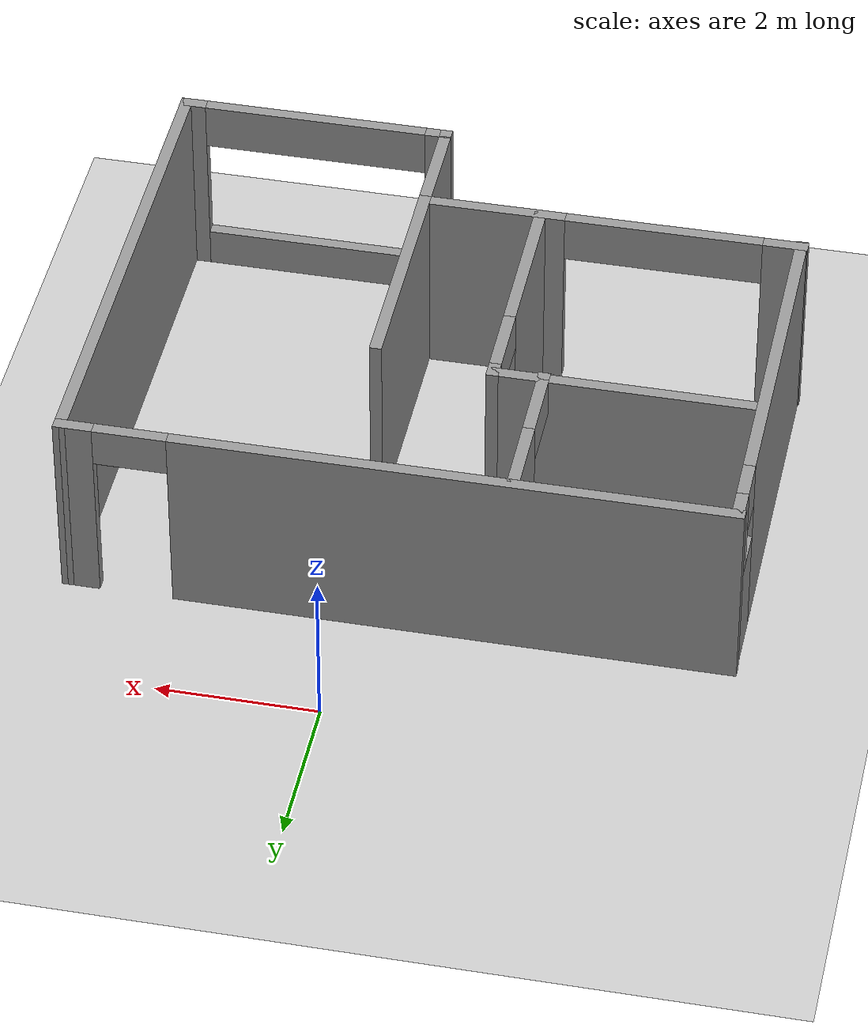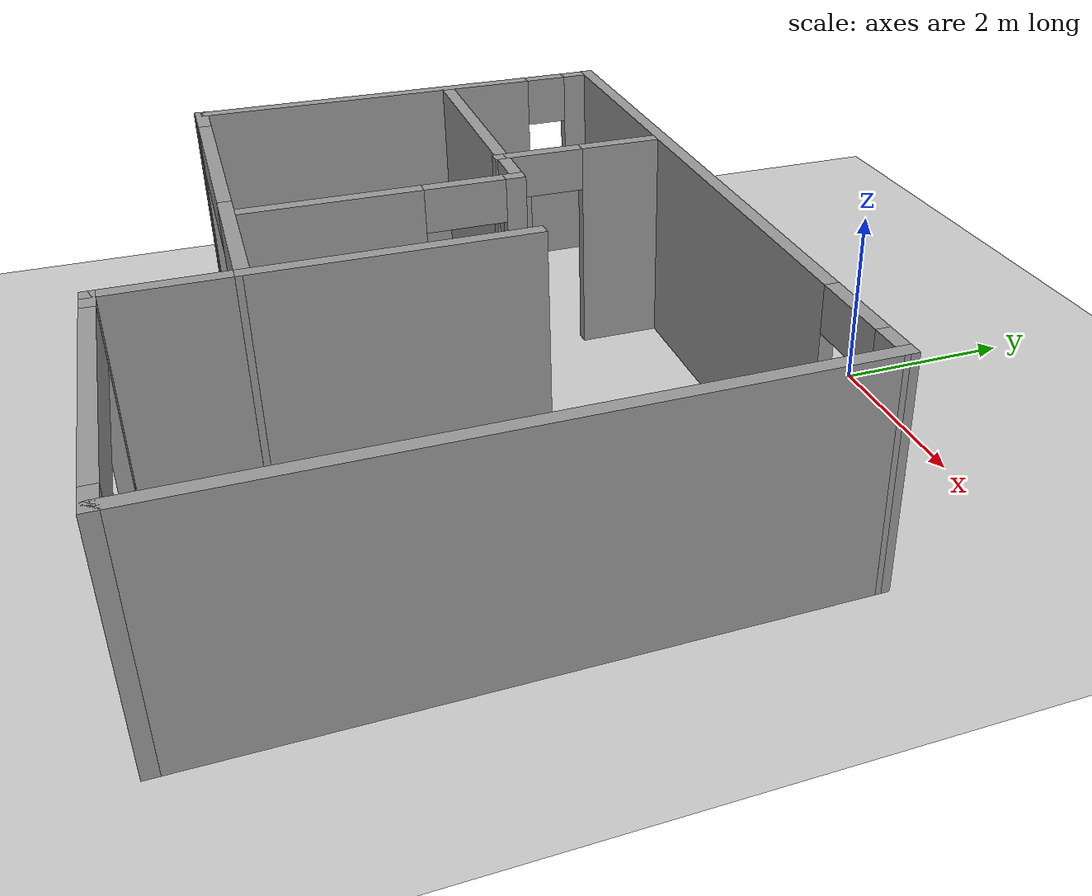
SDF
<sdf version="1.4">
 <world name="default">
  <include><uri>model://ground_plane</uri></include>
  <include><uri>model://sun</uri></include>
  <include><uri>model://house</uri></include>
  <light name="bath_light" type="spot">
   <attenuation><range>0</range><linear>0.05</linear></attenuation>
   <specular>1 1 1 1</specular>
   <spot><inner_angle>0.5</inner_angle><outer_angle>1</outer_angle><falloff>1</falloff></spot>
   <pose>-2.5 2.15 2.75 0 0 0</pose>
  </light>
  <light name="bedroom_light" type="spot">
   <attenuation><range>0</range><linear>0.05</linear></attenuation>
   <specular>1 1 1 1</specular>
   <spot><inner_angle>0.5</inner_angle><outer_angle>1</outer_angle><falloff>1</falloff></spot>
   <pose>-2.2 -0.2 2.75 0 0 0</pose>
  </light>
  <light name="living_light" type="spot">
   <attenuation><range>0</range><linear>0.05</linear></attenuation>
   <specular>1 1 1 1</specular>
   <spot><inner_angle>0.5</inner_angle><outer_angle>1</outer_angle><falloff>1</falloff></spot>
   <pose>2.41 -0.36 2.75 0 0 0</pose>
  </light>
  <light name="kitchen_light" type="spot">
   <attenuation><range>0</range><linear>0.05</linear></attenuation>
   <specular>1 1 1 1</specular>
   <spot><inner_angle>0.5</inner_angle><outer_angle>1</outer_angle><falloff>1</falloff></spot>
   <pose>0 0 2.75 0 0 0</pose>
  </light>
  <plugin name="KitcherLight" filename="libroom_light.so">
   <entity>cipobot::chassis</entity>
   <light_name>kitchen_light</light_name>
   <pose>-0.1 0.7 0 0 0 0</pose>
   <geometry><box><size>1 4.35 3</size></box></geometry>
  </plugin>
  <plugin name="LivingLight" filename="libroom_light.so">
   <entity>cipobot::chassis</entity>
   <light_name>living_light</light_name>
   <pose>2.3 -0.1 0 0 0 0 0</pose>
   <geometry><box><size>2.75 5.65 3</size></box></geometry>
  </plugin>
  <plugin name="BedroomLight" filename="libroom_light.so">
   <entity>cipobot::chassis</entity>
   <light_name>bedroom_light</light_name>
   <pose>-2.4 -0.3 0 0 0 0 0</pose>
   <geometry><box><size>2.75 2.6 3</size></box></geometry>
  </plugin>
  <plugin name="BathroomLight" filename="libroom_light.so">
   <entity>cipobot::chassis</entity>
   <light_name>bath_light</light_name>
   <pose>-2.75 2.15 0 0 0 0 0</pose>
   <geometry><box><size>2.25 1.5 3</size></box></geometry>
  </plugin>
 </world>
</sdf>

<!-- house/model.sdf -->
<sdf version='1.6'>
  <model name='house'>
    <static>true</static>
    <pose frame=''>-0.57616 -4.8144 0 0 -0 0</pose>
    <link name='Wall_0'>
      <pose frame=''>0 3.17108 0 0 -0 0.000963</pose>
      <visual name='Wall_0_Visual_0'>
        <pose frame=''>-0.686109 0 1.25 0 -0 0</pose>
        <geometry>
          <box>
            <size>6.84975 0.15 2.5</size>
          </box>
        </geometry>
        <material>
          <script>
            <uri>file://media/materials/scripts/gazebo.material</uri>
            <name>Gazebo/Grey</name>
          </script>
          <ambient>1 1 1 1</ambient>
        </material>
        <meta>
          <layer>0</layer>
        </meta>
      </visual>
      <collision name='Wall_0_Collision_0'>
        <geometry>
          <box>
            <size>6.84975 0.15 2.5</size>
          </box>
        </geometry>
        <pose frame=''>-0.686109 0 1.25 0 -0 0</pose>
      </collision>
      <visual name='Wall_0_Visual_1'>
        <pose frame=''>3.87487 0 1.25 0 -0 0</pose>
        <geometry>
          <box>
            <size>0.472219 0.15 2.5</size>
          </box>
        </geometry>
        <material>
          <script>
            <uri>file://media/materials/scripts/gazebo.material</uri>
            <name>Gazebo/Grey</name>
          </script>
          <ambient>1 1 1 1</ambient>
        </material>
        <meta>
          <layer>0</layer>
        </meta>
      </visual>
      <collision name='Wall_0_Collision_1'>
        <geometry>
          <box>
            <size>0.472219 0.15 2.5</size>
          </box>
        </geometry>
        <pose frame=''>3.87487 0 1.25 0 -0 0</pose>
      </collision>
      <visual name='Wall_0_Visual_2'>
        <pose frame=''>3.18876 0 2.25 0 -0 0</pose>
        <geometry>
          <box>
            <size>0.9 0.15 0.5</size>
          </box>
        </geometry>
        <material>
          <script>
            <uri>file://media/materials/scripts/gazebo.material</uri>
            <name>Gazebo/Grey</name>
          </script>
          <ambient>1 1 1 1</ambient>
        </material>
        <meta>
          <layer>0</layer>
        </meta>
      </visual>
      <collision name='Wall_0_Collision_2'>
        <geometry>
          <box>
            <size>0.9 0.15 0.5</size>
          </box>
        </geometry>
        <pose frame=''>3.18876 0 2.25 0 -0 0</pose>
      </collision>
    </link>
    <link name='Wall_12'>
      <pose frame=''>-4.02188 0.653826 0 0 -0 1.57184</pose>
      <visual name='Wall_12_Visual_0'>
        <pose frame=''>-0.461902 0 1.25 0 -0 0</pose>
        <geometry>
          <box>
            <size>4.22992 0.15 2.5</size>
          </box>
        </geometry>
        <material>
          <script>
            <uri>file://media/materials/scripts/gazebo.material</uri>
            <name>Gazebo/Grey</name>
          </script>
          <ambient>1 1 1 1</ambient>
        </material>
        <meta>
          <layer>0</layer>
        </meta>
      </visual>
      <collision name='Wall_12_Collision_0'>
        <geometry>
          <box>
            <size>4.22992 0.15 2.5</size>
          </box>
        </geometry>
        <pose frame=''>-0.461902 0 1.25 0 -0 0</pose>
      </collision>
      <visual name='Wall_12_Visual_1'>
        <pose frame=''>2.11496 0 0.7 0 -0 0</pose>
        <geometry>
          <box>
            <size>0.923803 0.15 1.4</size>
          </box>
        </geometry>
        <material>
          <script>
            <uri>file://media/materials/scripts/gazebo.material</uri>
            <name>Gazebo/Grey</name>
          </script>
          <ambient>1 1 1 1</ambient>
        </material>
        <meta>
          <layer>0</layer>
        </meta>
      </visual>
      <collision name='Wall_12_Collision_1'>
        <geometry>
          <box>
            <size>0.923803 0.15 1.4</size>
          </box>
        </geometry>
        <pose frame=''>2.11496 0 0.7 0 -0 0</pose>
      </collision>
      <visual name='Wall_12_Visual_2'>
        <pose frame=''>2.36496 0 1.95 0 -0 0</pose>
        <geometry>
          <box>
            <size>0.423803 0.15 1.1</size>
          </box>
        </geometry>
        <material>
          <script>
            <uri>file://media/materials/scripts/gazebo.material</uri>
            <name>Gazebo/Grey</name>
          </script>
          <ambient>1 1 1 1</ambient>
        </material>
        <meta>
          <layer>0</layer>
        </meta>
      </visual>
      <collision name='Wall_12_Collision_2'>
        <geometry>
          <box>
            <size>0.423803 0.15 1.1</size>
          </box>
        </geometry>
        <pose frame=''>2.36496 0 1.95 0 -0 0</pose>
      </collision>
      <visual name='Wall_12_Visual_3'>
        <pose frame=''>1.90306 0 2.2 0 -0 0</pose>
        <geometry>
          <box>
            <size>0.5 0.15 0.6</size>
          </box>
        </geometry>
        <material>
          <script>
            <uri>file://media/materials/scripts/gazebo.material</uri>
            <name>Gazebo/Grey</name>
          </script>
          <ambient>1 1 1 1</ambient>
        </material>
        <meta>
          <layer>0</layer>
        </meta>
      </visual>
      <collision name='Wall_12_Collision_3'>
        <geometry>
          <box>
            <size>0.5 0.15 0.6</size>
          </box>
        </geometry>
        <pose frame=''>1.90306 0 2.2 0 -0 0</pose>
      </collision>
    </link>
    <link name='Wall_14'>
      <collision name='Wall_14_Collision'>
        <geometry>
          <box>
            <size>3 0.15 2.5</size>
          </box>
        </geometry>
        <pose frame=''>0 0 1.25 0 -0 0</pose>
      </collision>
      <visual name='Wall_14_Visual'>
        <pose frame=''>0 0 1.25 0 -0 0</pose>
        <geometry>
          <box>
            <size>3 0.15 2.5</size>
          </box>
        </geometry>
        <material>
          <script>
            <uri>file://media/materials/scripts/gazebo.material</uri>
            <name>Gazebo/Grey</name>
          </script>
          <ambient>1 1 1 1</ambient>
        </material>
        <meta>
          <layer>0</layer>
        </meta>
      </visual>
      <pose frame=''>0.685981 -0.400036 0 0 -0 1.5708</pose>
    </link>
    <link name='Wall_16'>
      <pose frame=''>-0.774441 -0.274142 0 0 -0 1.5708</pose>
      <visual name='Wall_16_Visual_0'>
        <pose frame=''>-0.562712 0 1.25 0 -0 0</pose>
        <geometry>
          <box>
            <size>2.04987 0.15 2.5</size>
          </box>
        </geometry>
        <material>
          <script>
            <uri>file://media/materials/scripts/gazebo.material</uri>
            <name>Gazebo/Grey</name>
          </script>
          <ambient>1 1 1 1</ambient>
        </material>
        <meta>
          <layer>0</layer>
        </meta>
      </visual>
      <collision name='Wall_16_Collision_0'>
        <geometry>
          <box>
            <size>2.04987 0.15 2.5</size>
          </box>
        </geometry>
        <pose frame=''>-0.562712 0 1.25 0 -0 0</pose>
      </collision>
      <visual name='Wall_16_Visual_1'>
        <pose frame=''>1.47494 0 1.25 0 -0 0</pose>
        <geometry>
          <box>
            <size>0.225423 0.15 2.5</size>
          </box>
        </geometry>
        <material>
          <script>
            <uri>file://media/materials/scripts/gazebo.material</uri>
            <name>Gazebo/Grey</name>
          </script>
          <ambient>1 1 1 1</ambient>
        </material>
        <meta>
          <layer>0</layer>
        </meta>
      </visual>
      <collision name='Wall_16_Collision_1'>
        <geometry>
          <box>
            <size>0.225423 0.15 2.5</size>
          </box>
        </geometry>
        <pose frame=''>1.47494 0 1.25 0 -0 0</pose>
      </collision>
      <visual name='Wall_16_Visual_2'>
        <pose frame=''>0.912225 0 2.25 0 -0 0</pose>
        <geometry>
          <box>
            <size>0.9 0.15 0.5</size>
          </box>
        </geometry>
        <material>
          <script>
            <uri>file://media/materials/scripts/gazebo.material</uri>
            <name>Gazebo/Grey</name>
          </script>
          <ambient>1 1 1 1</ambient>
        </material>
        <meta>
          <layer>0</layer>
        </meta>
      </visual>
      <collision name='Wall_16_Collision_2'>
        <geometry>
          <box>
            <size>0.9 0.15 0.5</size>
          </box>
        </geometry>
        <pose frame=''>0.912225 0 2.25 0 -0 0</pose>
      </collision>
    </link>
    <link name='Wall_17'>
      <collision name='Wall_17_Collision'>
        <geometry>
          <box>
            <size>3.359 0.15 2.5</size>
          </box>
        </geometry>
        <pose frame=''>0 0 1.25 0 -0 0</pose>
      </collision>
      <visual name='Wall_17_Visual'>
        <pose frame=''>0 0 1.25 0 -0 0</pose>
        <geometry>
          <box>
            <size>3.359 0.15 2.5</size>
          </box>
        </geometry>
        <material>
          <script>
            <uri>file://media/materials/scripts/gazebo.material</uri>
            <name>Gazebo/Grey</name>
          </script>
          <ambient>1 1 1 1</ambient>
        </material>
        <meta>
          <layer>0</layer>
        </meta>
      </visual>
      <pose frame=''>-2.39044 1.23851 0 0 -0 3.14159</pose>
    </link>
    <link name='Wall_19'>
      <pose frame=''>-1.38218 2.13939 0 0 -0 1.5708</pose>
      <visual name='Wall_19_Visual_0'>
        <pose frame=''>-0.93679 0 1.25 0 -0 0</pose>
        <geometry>
          <box>
            <size>0.12642 0.15 2.5</size>
          </box>
        </geometry>
        <material>
          <script>
            <uri>file://media/materials/scripts/gazebo.material</uri>
            <name>Gazebo/Grey</name>
          </script>
          <ambient>1 1 1 1</ambient>
        </material>
        <meta>
          <layer>0</layer>
        </meta>
      </visual>
      <collision name='Wall_19_Collision_0'>
        <geometry>
          <box>
            <size>0.12642 0.15 2.5</size>
          </box>
        </geometry>
        <pose frame=''>-0.93679 0 1.25 0 -0 0</pose>
      </collision>
      <visual name='Wall_19_Visual_1'>
        <pose frame=''>0.51321 0 1.25 0 -0 0</pose>
        <geometry>
          <box>
            <size>0.97358 0.15 2.5</size>
          </box>
        </geometry>
        <material>
          <script>
            <uri>file://media/materials/scripts/gazebo.material</uri>
            <name>Gazebo/Grey</name>
          </script>
          <ambient>1 1 1 1</ambient>
        </material>
        <meta>
          <layer>0</layer>
        </meta>
      </visual>
      <collision name='Wall_19_Collision_1'>
        <geometry>
          <box>
            <size>0.97358 0.15 2.5</size>
          </box>
        </geometry>
        <pose frame=''>0.51321 0 1.25 0 -0 0</pose>
      </collision>
      <visual name='Wall_19_Visual_2'>
        <pose frame=''>-0.42358 0 2.25 0 -0 0</pose>
        <geometry>
          <box>
            <size>0.9 0.15 0.5</size>
          </box>
        </geometry>
        <material>
          <script>
            <uri>file://media/materials/scripts/gazebo.material</uri>
            <name>Gazebo/Grey</name>
          </script>
          <ambient>1 1 1 1</ambient>
        </material>
        <meta>
          <layer>0</layer>
        </meta>
      </visual>
      <collision name='Wall_19_Collision_2'>
        <geometry>
          <box>
            <size>0.9 0.15 0.5</size>
          </box>
        </geometry>
        <pose frame=''>-0.42358 0 2.25 0 -0 0</pose>
      </collision>
    </link>
    <link name='Wall_4'>
      <collision name='Wall_4_Collision'>
        <geometry>
          <box>
            <size>6.5 0.15 2.5</size>
          </box>
        </geometry>
        <pose frame=''>0 0 1.25 0 -0 0</pose>
      </collision>
      <visual name='Wall_4_Visual'>
        <pose frame=''>0 0 1.25 0 -0 0</pose>
        <geometry>
          <box>
            <size>6.5 0.15 2.5</size>
          </box>
        </geometry>
        <material>
          <script>
            <uri>file://media/materials/scripts/gazebo.material</uri>
            <name>Gazebo/Grey</name>
          </script>
          <ambient>1 1 1 1</ambient>
        </material>
        <meta>
          <layer>0</layer>
        </meta>
      </visual>
      <pose frame=''>4.03598 -3.6e-05 0 0 -0 -1.5708</pose>
    </link>
    <link name='Wall_5'>
      <pose frame=''>2.36098 -3.17504 0 0 -0 3.14159</pose>
      <visual name='Wall_5_Visual_0'>
        <pose frame=''>-1.58232 0 1.25 0 -0 0</pose>
        <geometry>
          <box>
            <size>0.335362 0.15 2.5</size>
          </box>
        </geometry>
        <material>
          <script>
            <uri>file://media/materials/scripts/gazebo.material</uri>
            <name>Gazebo/Grey</name>
          </script>
          <ambient>1 1 1 1</ambient>
        </material>
        <meta>
          <layer>0</layer>
        </meta>
      </visual>
      <collision name='Wall_5_Collision_0'>
        <geometry>
          <box>
            <size>0.335362 0.15 2.5</size>
          </box>
        </geometry>
        <pose frame=''>-1.58232 0 1.25 0 -0 0</pose>
      </collision>
      <visual name='Wall_5_Visual_1'>
        <pose frame=''>0.167681 0 0.25 0 -0 0</pose>
        <geometry>
          <box>
            <size>3.16464 0.15 0.5</size>
          </box>
        </geometry>
        <material>
          <script>
            <uri>file://media/materials/scripts/gazebo.material</uri>
            <name>Gazebo/Grey</name>
          </script>
          <ambient>1 1 1 1</ambient>
        </material>
        <meta>
          <layer>0</layer>
        </meta>
      </visual>
      <collision name='Wall_5_Collision_1'>
        <geometry>
          <box>
            <size>3.16464 0.15 0.5</size>
          </box>
        </geometry>
        <pose frame=''>0.167681 0 0.25 0 -0 0</pose>
      </collision>
      <visual name='Wall_5_Visual_2'>
        <pose frame=''>1.58268 0 1.5 0 -0 0</pose>
        <geometry>
          <box>
            <size>0.334638 0.15 2</size>
          </box>
        </geometry>
        <material>
          <script>
            <uri>file://media/materials/scripts/gazebo.material</uri>
            <name>Gazebo/Grey</name>
          </script>
          <ambient>1 1 1 1</ambient>
        </material>
        <meta>
          <layer>0</layer>
        </meta>
      </visual>
      <collision name='Wall_5_Collision_2'>
        <geometry>
          <box>
            <size>0.334638 0.15 2</size>
          </box>
        </geometry>
        <pose frame=''>1.58268 0 1.5 0 -0 0</pose>
      </collision>
      <visual name='Wall_5_Visual_3'>
        <pose frame=''>0.000362 0 2.2 0 -0 0</pose>
        <geometry>
          <box>
            <size>2.83 0.15 0.6</size>
          </box>
        </geometry>
        <material>
          <script>
            <uri>file://media/materials/scripts/gazebo.material</uri>
            <name>Gazebo/Grey</name>
          </script>
          <ambient>1 1 1 1</ambient>
        </material>
        <meta>
          <layer>0</layer>
        </meta>
      </visual>
      <collision name='Wall_5_Collision_3'>
        <geometry>
          <box>
            <size>2.83 0.15 0.6</size>
          </box>
        </geometry>
        <pose frame=''>0.000362 0 2.2 0 -0 0</pose>
      </collision>
    </link>
    <link name='Wall_6'>
      <collision name='Wall_6_Collision'>
        <geometry>
          <box>
            <size>1.5 0.15 2.5</size>
          </box>
        </geometry>
        <pose frame=''>0 0 1.25 0 -0 0</pose>
      </collision>
      <visual name='Wall_6_Visual'>
        <pose frame=''>0 0 1.25 0 -0 0</pose>
        <geometry>
          <box>
            <size>1.5 0.15 2.5</size>
          </box>
        </geometry>
        <material>
          <script>
            <uri>file://media/materials/scripts/gazebo.material</uri>
            <name>Gazebo/Grey</name>
          </script>
          <ambient>1 1 1 1</ambient>
        </material>
        <meta>
          <layer>0</layer>
        </meta>
      </visual>
      <pose frame=''>0.685981 -2.50004 0 0 -0 1.5708</pose>
    </link>
    <link name='Wall_7'>
      <pose frame=''>-1.6724 -1.83079 0 0 -0 -3.13916</pose>
      <visual name='Wall_7_Visual_0'>
        <pose frame=''>-1.50813 0 1.25 0 -0 0</pose>
        <geometry>
          <box>
            <size>1.85051 0.15 2.5</size>
          </box>
        </geometry>
        <material>
          <script>
            <uri>file://media/materials/scripts/gazebo.material</uri>
            <name>Gazebo/Grey</name>
          </script>
          <ambient>1 1 1 1</ambient>
        </material>
        <meta>
          <layer>0</layer>
        </meta>
      </visual>
      <collision name='Wall_7_Collision_0'>
        <geometry>
          <box>
            <size>1.85051 0.15 2.5</size>
          </box>
        </geometry>
        <pose frame=''>-1.50813 0 1.25 0 -0 0</pose>
      </collision>
      <visual name='Wall_7_Visual_1'>
        <pose frame=''>2.15526 0 1.25 0 -0 0</pose>
        <geometry>
          <box>
            <size>0.556263 0.15 2.5</size>
          </box>
        </geometry>
        <material>
          <script>
            <uri>file://media/materials/scripts/gazebo.material</uri>
            <name>Gazebo/Grey</name>
          </script>
          <ambient>1 1 1 1</ambient>
        </material>
        <meta>
          <layer>0</layer>
        </meta>
      </visual>
      <collision name='Wall_7_Collision_1'>
        <geometry>
          <box>
            <size>0.556263 0.15 2.5</size>
          </box>
        </geometry>
        <pose frame=''>2.15526 0 1.25 0 -0 0</pose>
      </collision>
      <visual name='Wall_7_Visual_2'>
        <pose frame=''>0.647124 0 2.2 0 -0 0</pose>
        <geometry>
          <box>
            <size>2.46 0.15 0.6</size>
          </box>
        </geometry>
        <material>
          <script>
            <uri>file://media/materials/scripts/gazebo.material</uri>
            <name>Gazebo/Grey</name>
          </script>
          <ambient>1 1 1 1</ambient>
        </material>
        <meta>
          <layer>0</layer>
        </meta>
      </visual>
      <collision name='Wall_7_Collision_2'>
        <geometry>
          <box>
            <size>2.46 0.15 0.6</size>
          </box>
        </geometry>
        <pose frame=''>0.647124 0 2.2 0 -0 0</pose>
      </collision>
    </link>
    <static>1</static>
  </model>
</sdf>
